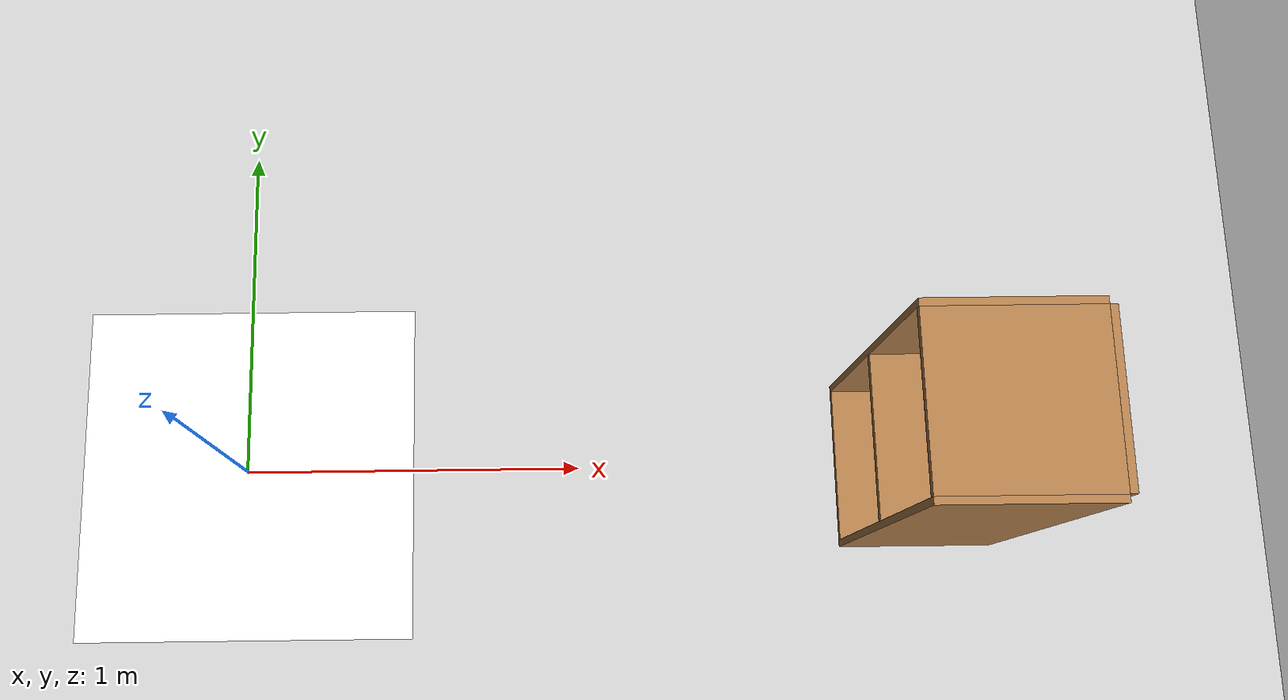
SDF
<?xml version="1.0" ?>
<sdf version="1.4">
  <world name="default">
    <include>
      <uri>model://ground_plane</uri>
    </include>
    <include>
      <uri>model://sun</uri>
    </include>
    <include>
      <uri>model://aruco_visual_marker_0</uri>
      <pose>0 0 0 0 0 0</pose>
    </include>
    <include>
      <uri>model://cabinet</uri>
      <pose>2 0 0 0 0 0</pose>
    </include>

    <!-- Only one ROS interface plugin is required per world, as any other plugin can connect a Gazebo
         topic to a ROS topic (or vise versa). -->
    <plugin name="ros_interface_plugin" filename="librotors_gazebo_ros_interface_plugin.so"/>

    <spherical_coordinates>
      <surface_model>EARTH_WGS84</surface_model>
      <latitude_deg>47.3667</latitude_deg>
      <longitude_deg>8.5500</longitude_deg>
      <elevation>500.0</elevation>
      <heading_deg>0</heading_deg>
    </spherical_coordinates>
    <physics type='ode'>
      <ode>
        <solver>
          <type>quick</type>
          <iters>1000</iters>
          <sor>1.3</sor>
        </solver>
        <constraints>
          <cfm>0</cfm>
          <erp>0.2</erp>
          <contact_max_correcting_vel>100</contact_max_correcting_vel>
          <contact_surface_layer>0.001</contact_surface_layer>
        </constraints>
      </ode>
      <max_step_size>0.01</max_step_size>
      <real_time_factor>1</real_time_factor>
      <real_time_update_rate>100</real_time_update_rate>
      <gravity>0 0 -9.8</gravity>
    </physics>
  </world>
</sdf>

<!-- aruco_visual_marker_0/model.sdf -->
<sdf version='1.5'>
  <model name='aruco_visual_marker_0'>

    <link name='marker'>
      <pose frame=''>0 0 0 0 0 0</pose>
      <visual name='visual'>
        <geometry>
          <box>
            <size>1.0 1.0 1e-5</size>
          </box>
        </geometry>
        <material>
          <script>
            <uri>model://aruco_visual_marker_0/materials/scripts</uri>
            <uri>model://aruco_visual_marker_0/materials/textures</uri>
            <name>ArucoVisualMarker0/Marker</name>
          </script>
          <ambient>1 1 1 1</ambient>
          <diffuse>1 1 1 1</diffuse>
          <specular>0 0 0 1</specular>
          <emissive>1 1 1 0</emissive>
          <shader type='vertex'>
            <normal_map>__default__</normal_map>
          </shader>
        </material>
        <pose frame=''>0 0 0 0 -0 0</pose>
        <cast_shadows>1</cast_shadows>
        <transparency>0</transparency>
      </visual>
      <collision name='collision'>
        <laser_retro>0</laser_retro>
        <max_contacts>10</max_contacts>
        <pose frame=''>0 0 0 0 -0 0</pose>
        <geometry>
          <box>
            <size>0.1778 0.1778 1e-05</size>
          </box>
        </geometry>
      </collision>
    </link>

    <link name='marker_pad'>
      <pose frame='marker'>0 0 -1e-5 0 -0 0</pose>
      <visual name='visual'>
        <geometry>
          <box>
            <size>0.1778 0.1778 1e-5</size>
          </box>
        </geometry>
        <material>
          <lighting>1</lighting>
          <script>
            <uri>file://media/materials/scripts/gazebo.material</uri>
            <name>Gazebo/White</name>
          </script>
          <ambient>0.3 0.3 0.3 1</ambient>
          <diffuse>0.7 0.7 0.7 1</diffuse>
          <specular>0.01 0.01 0.01 1</specular>
          <emissive>1 1 1 0</emissive>
          <shader type='vertex'>
            <normal_map>__default__</normal_map>
          </shader>
        </material>
        <cast_shadows>1</cast_shadows>
        <transparency>0</transparency>
      </visual>
      <collision name='collision'>
        <laser_retro>0</laser_retro>
        <max_contacts>10</max_contacts>
        <pose frame=''>0 0 0 0 -0 0</pose>
        <geometry>
          <box>
            <size>0.1778 0.1778 1e-5</size>
          </box>
        </geometry>
      </collision>
    </link>

    <joint name='marker_JOINT_marker_pad' type='revolute'>
      <parent>marker</parent>
      <child>marker_pad</child>
      <pose frame=''>0 0 0 0 -0 0</pose>
      <axis>
        <xyz>0 0 1</xyz>
        <limit>
          <upper>0</upper>
          <lower>0</lower>
        </limit>
      </axis>
    </joint>

    <static>1</static>
    <allow_auto_disable>1</allow_auto_disable>

  </model>
</sdf>

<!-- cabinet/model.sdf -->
<sdf version="1.5">
  <model name="cabinet">
    <static>true</static>
    <link name="cabinet_bottom_plate">
      <inertial>
        <pose>0 0 -1 0 0 0</pose>
        <inertia>
          <ixx>2.050000</ixx>
          <ixy>0</ixy>
          <ixz>0</ixz>
          <iyy>2.050000</iyy>
          <iyz>0</iyz>
          <izz>2.050000</izz>
        </inertia>
        <mass>25.000000</mass>
      </inertial>
      <collision name="cabinet_bottom_plate_geom">
        <pose>0 0 0.010000 0 0 0</pose>
        <geometry>
          <box>
            <size>0.450000 0.450000 0.020000</size>
          </box>
        </geometry>
      </collision>
      <visual name="cabinet_bottom_plate_geom_visual">
        <pose>0 0 0.010000 0 0 0</pose>
        <geometry>
          <box>
            <size>0.450000 0.450000 0.020000</size>
          </box>
        </geometry>
        <material>
          <script>
            <uri>model://media/materials/scripts/gazebo.material</uri>
            <name>Gazebo/Wood</name>
          </script>
        </material>
      </visual>
      <collision name="cabinet_bottom_plate_geom_cabinet_back_plate">
        <pose>0.235000 0 0.510000 0 0 0</pose>
        <geometry>
          <box>
            <size>0.020000 0.450000 1.020000</size>
          </box>
        </geometry>
      </collision>
      <visual name="cabinet_bottom_plate_geom_cabinet_back_plate_visual">
        <pose>0.235000 0 0.510000 0 0 0</pose>
        <geometry>
          <box>
            <size>0.020000 0.450000 1.020000</size>
          </box>
        </geometry>
        <material>
          <script>
            <uri>model://media/materials/scripts/gazebo.material</uri>
            <name>Gazebo/Wood</name>
          </script>
        </material>
      </visual>
      <collision name="cabinet_bottom_plate_geom_cabinet_left_plate">
        <pose>0 0.235000 0.510000 0 0 0</pose>
        <geometry>
          <box>
            <size>0.450000 0.020000 1.020000</size>
          </box>
        </geometry>
      </collision>
      <visual name="cabinet_bottom_plate_geom_cabinet_left_plate_visual">
        <pose>0 0.235000 0.510000 0 0 0</pose>
        <geometry>
          <box>
            <size>0.450000 0.020000 1.020000</size>
          </box>
        </geometry>
        <material>
          <script>
            <uri>model://media/materials/scripts/gazebo.material</uri>
            <name>Gazebo/Wood</name>
          </script>
        </material>
      </visual>
      <collision name="cabinet_bottom_plate_geom_cabinet_middle_plate">
        <pose>0 0 0.510000 0 0 0</pose>
        <geometry>
          <box>
            <size>0.450000 0.450000 0.020000</size>
          </box>
        </geometry>
      </collision>
      <visual name="cabinet_bottom_plate_geom_cabinet_middle_plate_visual">
        <pose>0 0 0.510000 0 0 0</pose>
        <geometry>
          <box>
            <size>0.450000 0.450000 0.020000</size>
          </box>
        </geometry>
        <material>
          <script>
            <uri>model://media/materials/scripts/gazebo.material</uri>
            <name>Gazebo/Wood</name>
          </script>
        </material>
      </visual>
      <collision name="cabinet_bottom_plate_geom_cabinet_right_plate">
        <pose>0 -0.235000 0.510000 0 0 0</pose>
        <geometry>
          <box>
            <size>0.450000 0.020000 1.020000</size>
          </box>
        </geometry>
      </collision>
      <visual name="cabinet_bottom_plate_geom_cabinet_right_plate_visual">
        <pose>0 -0.235000 0.510000 0 0 0</pose>
        <geometry>
          <box>
            <size>0.450000 0.020000 1.020000</size>
          </box>
        </geometry>
        <material>
          <script>
            <uri>model://media/materials/scripts/gazebo.material</uri>
            <name>Gazebo/Wood</name>
          </script>
        </material>
      </visual>
      <collision name="cabinet_bottom_plate_geom_cabinet_top_plate">
        <pose>0 0 1.010000 0 0 0</pose>
        <geometry>
          <box>
            <size>0.450000 0.450000 0.020000</size>
          </box>
        </geometry>
      </collision>
      <visual name="cabinet_bottom_plate_geom_cabinet_top_plate_visual">
        <pose>0 0 1.010000 0 0 0</pose>
        <geometry>
          <box>
            <size>0.450000 0.450000 0.020000</size>
          </box>
        </geometry>
        <material>
          <script>
            <uri>model://media/materials/scripts/gazebo.material</uri>
            <name>Gazebo/Wood</name>
          </script>
        </material>
      </visual>
    </link>
  </model>
</sdf>
